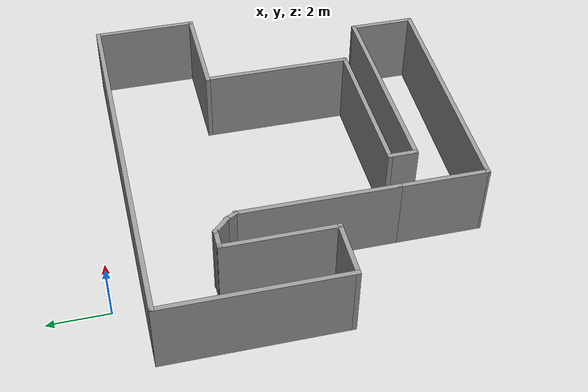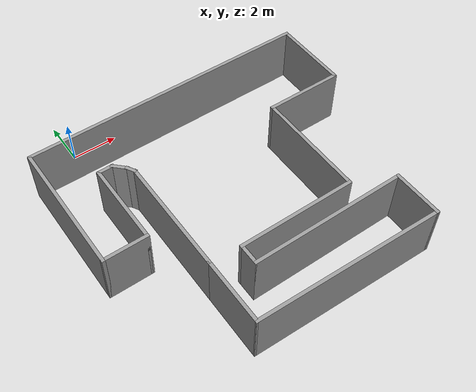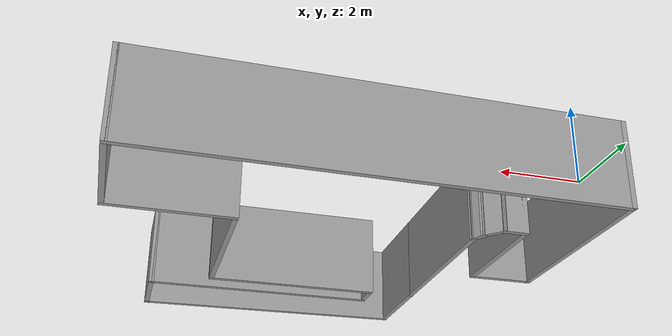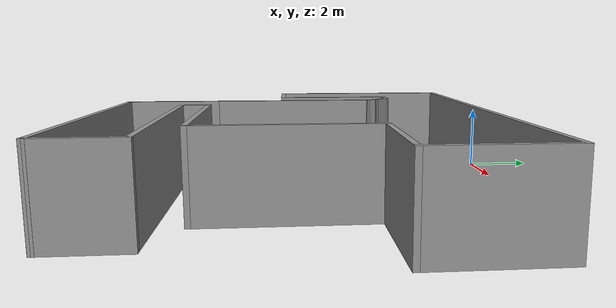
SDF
<?xml version='1.0'?>
<sdf version='1.7'>
  <model name='room_map_demo'>
    <pose>4.29297 -6.13753 0 0 -0 0</pose>
    <link name='Wall_1'>
      <collision name='Wall_1_Collision'>
        <geometry>
          <box>
            <size>6 0.15 2.5</size>
          </box>
        </geometry>
        <pose>0 0 1.25 0 -0 0</pose>
      </collision>
      <visual name='Wall_1_Visual'>
        <pose>0 0 1.25 0 -0 0</pose>
        <geometry>
          <box>
            <size>6 0.15 2.5</size>
          </box>
        </geometry>
        <material>
          <script>
            <uri>file://media/materials/scripts/gazebo.material</uri>
            <name>Gazebo/Grey</name>
          </script>
          <ambient>1 1 1 1</ambient>
        </material>
        <meta>
          <layer>0</layer>
        </meta>
      </visual>
      <pose>-6.425 2.16448 0 0 -0 1.5708</pose>
    </link>
    <link name='Wall_10'>
      <collision name='Wall_10_Collision'>
        <geometry>
          <box>
            <size>0.75 0.15 2.5</size>
          </box>
        </geometry>
        <pose>0 0 1.25 0 -0 0</pose>
      </collision>
      <visual name='Wall_10_Visual'>
        <pose>0 0 1.25 0 -0 0</pose>
        <geometry>
          <box>
            <size>0.75 0.15 2.5</size>
          </box>
        </geometry>
        <material>
          <script>
            <uri>file://media/materials/scripts/gazebo.material</uri>
            <name>Gazebo/Grey</name>
          </script>
          <ambient>1 1 1 1</ambient>
        </material>
        <meta>
          <layer>0</layer>
        </meta>
      </visual>
      <pose>-3.76287 2.62735 0 0 -0 -0.785398</pose>
    </link>
    <link name='Wall_11'>
      <collision name='Wall_11_Collision'>
        <geometry>
          <box>
            <size>0.5 0.15 2.5</size>
          </box>
        </geometry>
        <pose>0 0 1.25 0 -0 0</pose>
      </collision>
      <visual name='Wall_11_Visual'>
        <pose>0 0 1.25 0 -0 0</pose>
        <geometry>
          <box>
            <size>0.5 0.15 2.5</size>
          </box>
        </geometry>
        <material>
          <script>
            <uri>file://media/materials/scripts/gazebo.material</uri>
            <name>Gazebo/Grey</name>
          </script>
          <ambient>1 1 1 1</ambient>
        </material>
        <meta>
          <layer>0</layer>
        </meta>
      </visual>
      <pose>-3.46324 2.26366 0 0 -0 -1.0472</pose>
    </link>
    <link name='Wall_12'>
      <collision name='Wall_12_Collision'>
        <geometry>
          <box>
            <size>5.25 0.15 2.5</size>
          </box>
        </geometry>
        <pose>0 0 1.25 0 -0 0</pose>
      </collision>
      <visual name='Wall_12_Visual'>
        <pose>0 0 1.25 0 -0 0</pose>
        <geometry>
          <box>
            <size>5.25 0.15 2.5</size>
          </box>
        </geometry>
        <material>
          <script>
            <uri>file://media/materials/scripts/gazebo.material</uri>
            <name>Gazebo/Grey</name>
          </script>
          <ambient>1 1 1 1</ambient>
        </material>
        <meta>
          <layer>0</layer>
        </meta>
      </visual>
      <pose>-3.37574 -0.437892 0 0 -0 -1.5708</pose>
    </link>
    <link name='Wall_14'>
      <collision name='Wall_14_Collision'>
        <geometry>
          <box>
            <size>5.25 0.15 2.5</size>
          </box>
        </geometry>
        <pose>0 0 1.25 0 -0 0</pose>
      </collision>
      <visual name='Wall_14_Visual'>
        <pose>0 0 1.25 0 -0 0</pose>
        <geometry>
          <box>
            <size>5.25 0.15 2.5</size>
          </box>
        </geometry>
        <material>
          <script>
            <uri>file://media/materials/scripts/gazebo.material</uri>
            <name>Gazebo/Grey</name>
          </script>
          <ambient>1 1 1 1</ambient>
        </material>
        <meta>
          <layer>0</layer>
        </meta>
      </visual>
      <pose>0.525 -3.11052 0 0 -0 3.14159</pose>
    </link>
    <link name='Wall_15'>
      <collision name='Wall_15_Collision'>
        <geometry>
          <box>
            <size>1 0.15 2.5</size>
          </box>
        </geometry>
        <pose>0 0 1.25 0 -0 0</pose>
      </collision>
      <visual name='Wall_15_Visual'>
        <pose>0 0 1.25 0 -0 0</pose>
        <geometry>
          <box>
            <size>1 0.15 2.5</size>
          </box>
        </geometry>
        <material>
          <script>
            <uri>file://media/materials/scripts/gazebo.material</uri>
            <name>Gazebo/Grey</name>
          </script>
          <ambient>1 1 1 1</ambient>
        </material>
        <meta>
          <layer>0</layer>
        </meta>
      </visual>
      <pose>-2.025 -3.53552 0 0 -0 -1.5708</pose>
    </link>
    <link name='Wall_17'>
      <collision name='Wall_17_Collision'>
        <geometry>
          <box>
            <size>3 0.15 2.5</size>
          </box>
        </geometry>
        <pose>0 0 1.25 0 -0 0</pose>
      </collision>
      <visual name='Wall_17_Visual'>
        <pose>0 0 1.25 0 -0 0</pose>
        <geometry>
          <box>
            <size>3 0.15 2.5</size>
          </box>
        </geometry>
        <material>
          <script>
            <uri>file://media/materials/scripts/gazebo.material</uri>
            <name>Gazebo/Grey</name>
          </script>
          <ambient>1 1 1 1</ambient>
        </material>
        <meta>
          <layer>0</layer>
        </meta>
      </visual>
      <pose>-3.37574 -4.41289 0 0 -0 -1.5708</pose>
    </link>
    <link name='Wall_19'>
      <collision name='Wall_19_Collision'>
        <geometry>
          <box>
            <size>7 0.15 2.5</size>
          </box>
        </geometry>
        <pose>0 0 1.25 0 -0 0</pose>
      </collision>
      <visual name='Wall_19_Visual'>
        <pose>0 0 1.25 0 -0 0</pose>
        <geometry>
          <box>
            <size>7 0.15 2.5</size>
          </box>
        </geometry>
        <material>
          <script>
            <uri>file://media/materials/scripts/gazebo.material</uri>
            <name>Gazebo/Grey</name>
          </script>
          <ambient>1 1 1 1</ambient>
        </material>
        <meta>
          <layer>0</layer>
        </meta>
      </visual>
      <pose>1.4 -3.96052 0 0 -0 0</pose>
    </link>
    <link name='Wall_2'>
      <collision name='Wall_2_Collision'>
        <geometry>
          <box>
            <size>13 0.15 2.5</size>
          </box>
        </geometry>
        <pose>0 0 1.25 0 -0 0</pose>
      </collision>
      <visual name='Wall_2_Visual'>
        <pose>0 0 1.25 0 -0 0</pose>
        <geometry>
          <box>
            <size>13 0.15 2.5</size>
          </box>
        </geometry>
        <material>
          <script>
            <uri>file://media/materials/scripts/gazebo.material</uri>
            <name>Gazebo/Grey</name>
          </script>
          <ambient>1 1 1 1</ambient>
        </material>
        <meta>
          <layer>0</layer>
        </meta>
      </visual>
      <pose>0 5.08948 0 0 -0 0</pose>
    </link>
    <link name='Wall_20'>
      <collision name='Wall_20_Collision'>
        <geometry>
          <box>
            <size>2.25 0.15 2.5</size>
          </box>
        </geometry>
        <pose>0 0 1.25 0 -0 0</pose>
      </collision>
      <visual name='Wall_20_Visual'>
        <pose>0 0 1.25 0 -0 0</pose>
        <geometry>
          <box>
            <size>2.25 0.15 2.5</size>
          </box>
        </geometry>
        <material>
          <script>
            <uri>file://media/materials/scripts/gazebo.material</uri>
            <name>Gazebo/Grey</name>
          </script>
          <ambient>1 1 1 1</ambient>
        </material>
        <meta>
          <layer>0</layer>
        </meta>
      </visual>
      <pose>4.825 -5.01052 0 0 -0 -1.5708</pose>
    </link>
    <link name='Wall_23'>
      <collision name='Wall_23_Collision'>
        <geometry>
          <box>
            <size>8.35376 0.15 2.5</size>
          </box>
        </geometry>
        <pose>0 0 1.25 0 -0 0</pose>
      </collision>
      <visual name='Wall_23_Visual'>
        <pose>0 0 1.25 0 -0 0</pose>
        <geometry>
          <box>
            <size>8.35376 0.15 2.5</size>
          </box>
        </geometry>
        <material>
          <script>
            <uri>file://media/materials/scripts/gazebo.material</uri>
            <name>Gazebo/Grey</name>
          </script>
          <ambient>1 1 1 1</ambient>
        </material>
        <meta>
          <layer>0</layer>
        </meta>
      </visual>
      <pose>0.724632 -5.94921 0 0 -0 -0.027141</pose>
    </link>
    <link name='Wall_3'>
      <collision name='Wall_3_Collision'>
        <geometry>
          <box>
            <size>3.5 0.15 2.5</size>
          </box>
        </geometry>
        <pose>0 0 1.25 0 -0 0</pose>
      </collision>
      <visual name='Wall_3_Visual'>
        <pose>0 0 1.25 0 -0 0</pose>
        <geometry>
          <box>
            <size>3.5 0.15 2.5</size>
          </box>
        </geometry>
        <material>
          <script>
            <uri>file://media/materials/scripts/gazebo.material</uri>
            <name>Gazebo/Grey</name>
          </script>
          <ambient>1 1 1 1</ambient>
        </material>
        <meta>
          <layer>0</layer>
        </meta>
      </visual>
      <pose>6.425 3.41448 0 0 -0 -1.5708</pose>
    </link>
    <link name='Wall_4'>
      <collision name='Wall_4_Collision'>
        <geometry>
          <box>
            <size>3.5 0.15 2.5</size>
          </box>
        </geometry>
        <pose>0 0 1.25 0 -0 0</pose>
      </collision>
      <visual name='Wall_4_Visual'>
        <pose>0 0 1.25 0 -0 0</pose>
        <geometry>
          <box>
            <size>3.5 0.15 2.5</size>
          </box>
        </geometry>
        <material>
          <script>
            <uri>file://media/materials/scripts/gazebo.material</uri>
            <name>Gazebo/Grey</name>
          </script>
          <ambient>1 1 1 1</ambient>
        </material>
        <meta>
          <layer>0</layer>
        </meta>
      </visual>
      <pose>4.75 1.73948 0 0 -0 3.14159</pose>
    </link>
    <link name='Wall_5'>
      <collision name='Wall_5_Collision'>
        <geometry>
          <box>
            <size>5 0.15 2.5</size>
          </box>
        </geometry>
        <pose>0 0 1.25 0 -0 0</pose>
      </collision>
      <visual name='Wall_5_Visual'>
        <pose>0 0 1.25 0 -0 0</pose>
        <geometry>
          <box>
            <size>5 0.15 2.5</size>
          </box>
        </geometry>
        <material>
          <script>
            <uri>file://media/materials/scripts/gazebo.material</uri>
            <name>Gazebo/Grey</name>
          </script>
          <ambient>1 1 1 1</ambient>
        </material>
        <meta>
          <layer>0</layer>
        </meta>
      </visual>
      <pose>3.075 -0.68552 0 0 -0 -1.5708</pose>
    </link>
    <link name='Wall_7'>
      <collision name='Wall_7_Collision'>
        <geometry>
          <box>
            <size>2 0.15 2.5</size>
          </box>
        </geometry>
        <pose>0 0 1.25 0 -0 0</pose>
      </collision>
      <visual name='Wall_7_Visual'>
        <pose>0 0 1.25 0 -0 0</pose>
        <geometry>
          <box>
            <size>2 0.15 2.5</size>
          </box>
        </geometry>
        <material>
          <script>
            <uri>file://media/materials/scripts/gazebo.material</uri>
            <name>Gazebo/Grey</name>
          </script>
          <ambient>1 1 1 1</ambient>
        </material>
        <meta>
          <layer>0</layer>
        </meta>
      </visual>
      <pose>-5.5 -0.76052 0 0 -0 0</pose>
    </link>
    <link name='Wall_8'>
      <collision name='Wall_8_Collision'>
        <geometry>
          <box>
            <size>3.75 0.15 2.5</size>
          </box>
        </geometry>
        <pose>0 0 1.25 0 -0 0</pose>
      </collision>
      <visual name='Wall_8_Visual'>
        <pose>0 0 1.25 0 -0 0</pose>
        <geometry>
          <box>
            <size>3.75 0.15 2.5</size>
          </box>
        </geometry>
        <material>
          <script>
            <uri>file://media/materials/scripts/gazebo.material</uri>
            <name>Gazebo/Grey</name>
          </script>
          <ambient>1 1 1 1</ambient>
        </material>
        <meta>
          <layer>0</layer>
        </meta>
      </visual>
      <pose>-4.575 1.03948 0 0 -0 1.5708</pose>
    </link>
    <link name='Wall_9'>
      <collision name='Wall_9_Collision'>
        <geometry>
          <box>
            <size>0.75 0.15 2.5</size>
          </box>
        </geometry>
        <pose>0 0 1.25 0 -0 0</pose>
      </collision>
      <visual name='Wall_9_Visual'>
        <pose>0 0 1.25 0 -0 0</pose>
        <geometry>
          <box>
            <size>0.75 0.15 2.5</size>
          </box>
        </geometry>
        <material>
          <script>
            <uri>file://media/materials/scripts/gazebo.material</uri>
            <name>Gazebo/Grey</name>
          </script>
          <ambient>1 1 1 1</ambient>
        </material>
        <meta>
          <layer>0</layer>
        </meta>
      </visual>
      <pose>-4.275 2.83948 0 0 -0 0</pose>
    </link>
    <static>1</static>
  </model>
</sdf>
